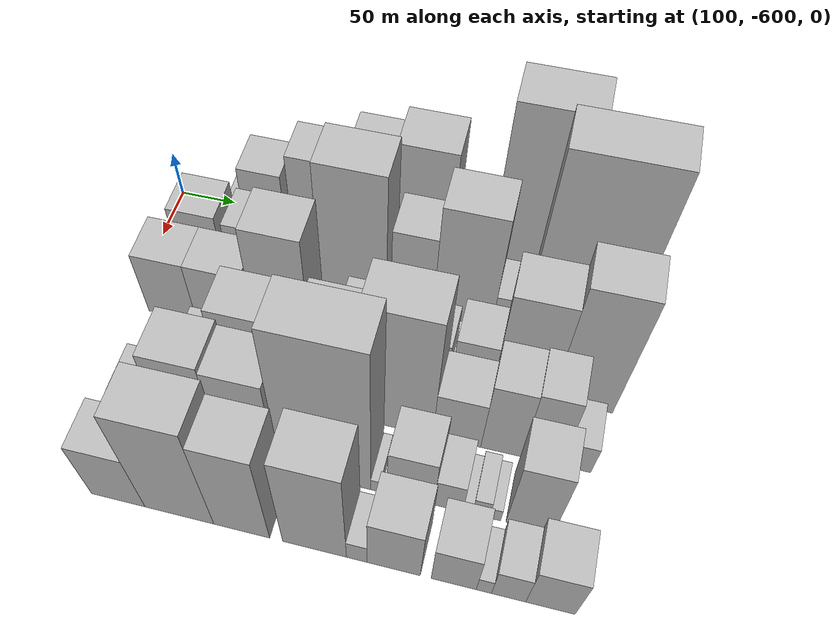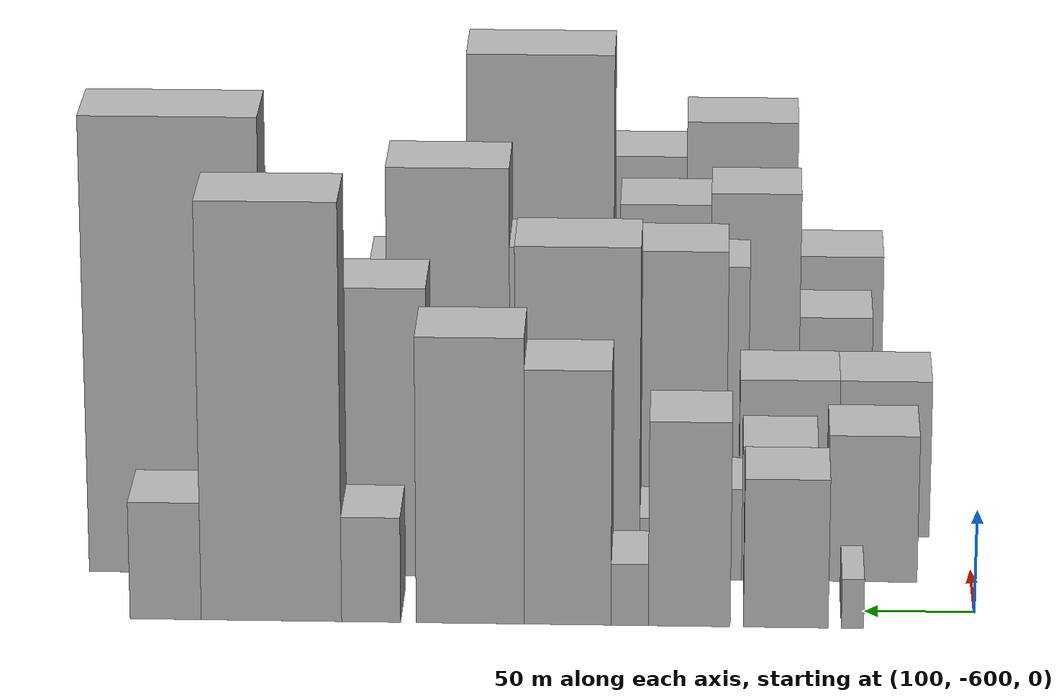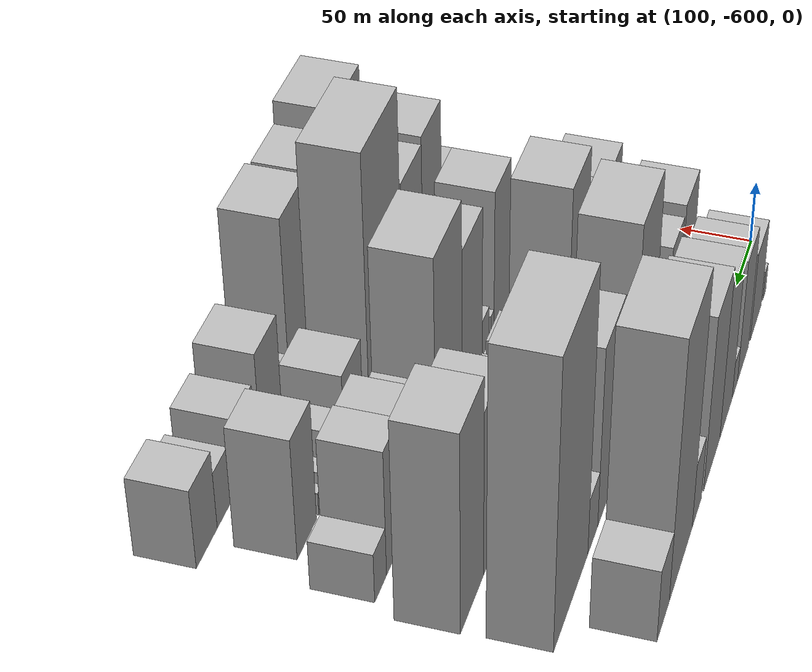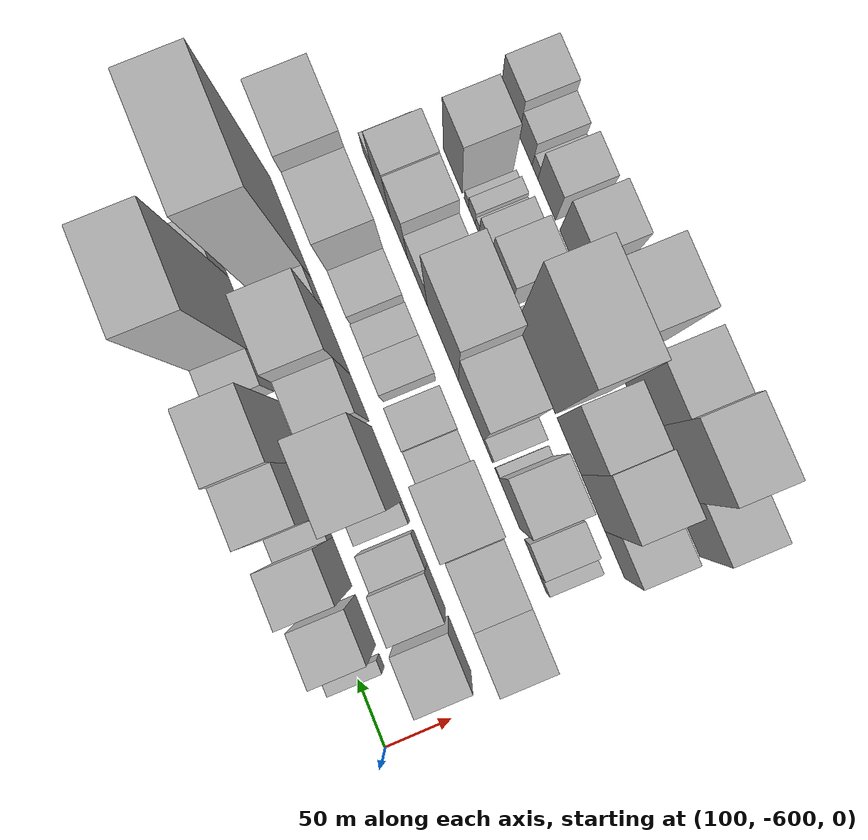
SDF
<sdf version="1.6">
 <world name="default">
  <model name="building_12">
   <static>1</static>
   <pose>100.0000 -543.9609 0 0.000000 0.000000 0.000000</pose>
   <link name="link">
    <pose>0 0 12.00 0 0 0</pose>
    <collision name="collision"><geometry><box><size>40.0000 10.0749 24.0000</size></box></geometry></collision>
    <visual name="visual">
     <cast_shadows>0</cast_shadows>
     <geometry><box><size>40.0000 10.0749 24.0000</size></box></geometry>
     <material>
      <script>
       <uri>model://HANNAS_wall/materials/scripts</uri>
       <uri>model://HANNAS_wall/materials/textures</uri>
       <name>vrc/HANNAS_wall</name>
      </script>
     </material>
    </visual>
   </link>
  </model>
  <model name="building_13">
   <static>1</static>
   <pose>100.0000 -513.7747 0 0.000000 0.000000 0.000000</pose>
   <link name="link">
    <pose>0 0 36.00 0 0 0</pose>
    <collision name="collision"><geometry><box><size>40.0000 38.2976 72.0000</size></box></geometry></collision>
    <visual name="visual">
     <cast_shadows>0</cast_shadows>
     <geometry><box><size>40.0000 38.2976 72.0000</size></box></geometry>
     <material>
      <script>
       <uri>model://HANNAS_wall/materials/scripts</uri>
       <uri>model://HANNAS_wall/materials/textures</uri>
       <name>vrc/HANNAS_wall</name>
      </script>
     </material>
    </visual>
   </link>
  </model>
  <model name="building_14">
   <static>1</static>
   <pose>100.0000 -470.0800 0 0.000000 0.000000 0.000000</pose>
   <link name="link">
    <pose>0 0 49.50 0 0 0</pose>
    <collision name="collision"><geometry><box><size>40.0000 37.0917 99.0000</size></box></geometry></collision>
    <visual name="visual">
     <cast_shadows>0</cast_shadows>
     <geometry><box><size>40.0000 37.0917 99.0000</size></box></geometry>
     <material>
      <script>
       <uri>model://HANNAS_wall/materials/scripts</uri>
       <uri>model://HANNAS_wall/materials/textures</uri>
       <name>vrc/HANNAS_wall</name>
      </script>
     </material>
    </visual>
   </link>
  </model>
  <model name="building_15">
   <static>1</static>
   <pose>100.0000 -443.1057 0 0.000000 0.000000 0.000000</pose>
   <link name="link">
    <pose>0 0 15.00 0 0 0</pose>
    <collision name="collision"><geometry><box><size>40.0000 16.8570 30.0000</size></box></geometry></collision>
    <visual name="visual">
     <cast_shadows>0</cast_shadows>
     <geometry><box><size>40.0000 16.8570 30.0000</size></box></geometry>
     <material>
      <script>
       <uri>model://HANNAS_wall/materials/scripts</uri>
       <uri>model://HANNAS_wall/materials/textures</uri>
       <name>vrc/HANNAS_wall</name>
      </script>
     </material>
    </visual>
   </link>
  </model>
  <model name="building_16">
   <static>1</static>
   <pose>100.0000 -414.9808 0 0.000000 0.000000 0.000000</pose>
   <link name="link">
    <pose>0 0 61.50 0 0 0</pose>
    <collision name="collision"><geometry><box><size>40.0000 39.3927 123.0000</size></box></geometry></collision>
    <visual name="visual">
     <cast_shadows>0</cast_shadows>
     <geometry><box><size>40.0000 39.3927 123.0000</size></box></geometry>
     <material>
      <script>
       <uri>model://HANNAS_wall/materials/scripts</uri>
       <uri>model://HANNAS_wall/materials/textures</uri>
       <name>vrc/HANNAS_wall</name>
      </script>
     </material>
    </visual>
   </link>
  </model>
  <model name="building_17">
   <static>1</static>
   <pose>100.0000 -370.8028 0 0.000000 0.000000 0.000000</pose>
   <link name="link">
    <pose>0 0 69.00 0 0 0</pose>
    <collision name="collision"><geometry><box><size>40.0000 48.9632 138.0000</size></box></geometry></collision>
    <visual name="visual">
     <cast_shadows>0</cast_shadows>
     <geometry><box><size>40.0000 48.9632 138.0000</size></box></geometry>
     <material>
      <script>
       <uri>model://HANNAS_wall/materials/scripts</uri>
       <uri>model://HANNAS_wall/materials/textures</uri>
       <name>vrc/HANNAS_wall</name>
      </script>
     </material>
    </visual>
   </link>
  </model>
  <model name="building_18">
   <static>1</static>
   <pose>100.0000 -325.9288 0 0.000000 0.000000 0.000000</pose>
   <link name="link">
    <pose>0 0 25.50 0 0 0</pose>
    <collision name="collision"><geometry><box><size>40.0000 26.7848 51.0000</size></box></geometry></collision>
    <visual name="visual">
     <cast_shadows>0</cast_shadows>
     <geometry><box><size>40.0000 26.7848 51.0000</size></box></geometry>
     <material>
      <script>
       <uri>model://HANNAS_wall/materials/scripts</uri>
       <uri>model://HANNAS_wall/materials/textures</uri>
       <name>vrc/HANNAS_wall</name>
      </script>
     </material>
    </visual>
   </link>
  </model>
  <model name="building_19">
   <static>1</static>
   <pose>100.0000 -280.6266 0 0.000000 0.000000 0.000000</pose>
   <link name="link">
    <pose>0 0 100.50 0 0 0</pose>
    <collision name="collision"><geometry><box><size>40.0000 63.8196 201.0000</size></box></geometry></collision>
    <visual name="visual">
     <cast_shadows>0</cast_shadows>
     <geometry><box><size>40.0000 63.8196 201.0000</size></box></geometry>
     <material>
      <script>
       <uri>model://HANNAS_wall/materials/scripts</uri>
       <uri>model://HANNAS_wall/materials/textures</uri>
       <name>vrc/HANNAS_wall</name>
      </script>
     </material>
    </visual>
   </link>
  </model>
  <model name="building_20">
   <static>1</static>
   <pose>100.0000 -232.5159 0 0.000000 0.000000 0.000000</pose>
   <link name="link">
    <pose>0 0 28.50 0 0 0</pose>
    <collision name="collision"><geometry><box><size>40.0000 32.4018 57.0000</size></box></geometry></collision>
    <visual name="visual">
     <cast_shadows>0</cast_shadows>
     <geometry><box><size>40.0000 32.4018 57.0000</size></box></geometry>
     <material>
      <script>
       <uri>model://HANNAS_wall/materials/scripts</uri>
       <uri>model://HANNAS_wall/materials/textures</uri>
       <name>vrc/HANNAS_wall</name>
      </script>
     </material>
    </visual>
   </link>
  </model>
  <model name="building_59">
   <static>1</static>
   <pose>155.0000 -553.9501 0 0.000000 0.000000 0.000000</pose>
   <link name="link">
    <pose>0 0 36.00 0 0 0</pose>
    <collision name="collision"><geometry><box><size>40.0000 41.3999 72.0000</size></box></geometry></collision>
    <visual name="visual">
     <cast_shadows>0</cast_shadows>
     <geometry><box><size>40.0000 41.3999 72.0000</size></box></geometry>
     <material>
      <script>
       <uri>model://HANNAS_wall/materials/scripts</uri>
       <uri>model://HANNAS_wall/materials/textures</uri>
       <name>vrc/HANNAS_wall</name>
      </script>
     </material>
    </visual>
   </link>
  </model>
  <model name="building_60">
   <static>1</static>
   <pose>155.0000 -511.0040 0 0.000000 0.000000 0.000000</pose>
   <link name="link">
    <pose>0 0 33.00 0 0 0</pose>
    <collision name="collision"><geometry><box><size>40.0000 34.4923 66.0000</size></box></geometry></collision>
    <visual name="visual">
     <cast_shadows>0</cast_shadows>
     <geometry><box><size>40.0000 34.4923 66.0000</size></box></geometry>
     <material>
      <script>
       <uri>model://HANNAS_wall/materials/scripts</uri>
       <uri>model://HANNAS_wall/materials/textures</uri>
       <name>vrc/HANNAS_wall</name>
      </script>
     </material>
    </visual>
   </link>
  </model>
  <model name="building_61">
   <static>1</static>
   <pose>155.0000 -480.9429 0 0.000000 0.000000 0.000000</pose>
   <link name="link">
    <pose>0 0 22.50 0 0 0</pose>
    <collision name="collision"><geometry><box><size>40.0000 25.6301 45.0000</size></box></geometry></collision>
    <visual name="visual">
     <cast_shadows>0</cast_shadows>
     <geometry><box><size>40.0000 25.6301 45.0000</size></box></geometry>
     <material>
      <script>
       <uri>model://HANNAS_wall/materials/scripts</uri>
       <uri>model://HANNAS_wall/materials/textures</uri>
       <name>vrc/HANNAS_wall</name>
      </script>
     </material>
    </visual>
   </link>
  </model>
  <model name="building_62">
   <static>1</static>
   <pose>155.0000 -454.3677 0 0.000000 0.000000 0.000000</pose>
   <link name="link">
    <pose>0 0 15.00 0 0 0</pose>
    <collision name="collision"><geometry><box><size>40.0000 15.5203 30.0000</size></box></geometry></collision>
    <visual name="visual">
     <cast_shadows>0</cast_shadows>
     <geometry><box><size>40.0000 15.5203 30.0000</size></box></geometry>
     <material>
      <script>
       <uri>model://HANNAS_wall/materials/scripts</uri>
       <uri>model://HANNAS_wall/materials/textures</uri>
       <name>vrc/HANNAS_wall</name>
      </script>
     </material>
    </visual>
   </link>
  </model>
  <model name="building_63">
   <static>1</static>
   <pose>155.0000 -417.8181 0 0.000000 0.000000 0.000000</pose>
   <link name="link">
    <pose>0 0 81.00 0 0 0</pose>
    <collision name="collision"><geometry><box><size>40.0000 57.5789 162.0000</size></box></geometry></collision>
    <visual name="visual">
     <cast_shadows>0</cast_shadows>
     <geometry><box><size>40.0000 57.5789 162.0000</size></box></geometry>
     <material>
      <script>
       <uri>model://HANNAS_wall/materials/scripts</uri>
       <uri>model://HANNAS_wall/materials/textures</uri>
       <name>vrc/HANNAS_wall</name>
      </script>
     </material>
    </visual>
   </link>
  </model>
  <model name="building_64">
   <static>1</static>
   <pose>155.0000 -366.7792 0 0.000000 0.000000 0.000000</pose>
   <link name="link">
    <pose>0 0 51.00 0 0 0</pose>
    <collision name="collision"><geometry><box><size>40.0000 36.4988 102.0000</size></box></geometry></collision>
    <visual name="visual">
     <cast_shadows>0</cast_shadows>
     <geometry><box><size>40.0000 36.4988 102.0000</size></box></geometry>
     <material>
      <script>
       <uri>model://HANNAS_wall/materials/scripts</uri>
       <uri>model://HANNAS_wall/materials/textures</uri>
       <name>vrc/HANNAS_wall</name>
      </script>
     </material>
    </visual>
   </link>
  </model>
  <model name="building_65">
   <static>1</static>
   <pose>155.0000 -323.1969 0 0.000000 0.000000 0.000000</pose>
   <link name="link">
    <pose>0 0 70.50 0 0 0</pose>
    <collision name="collision"><geometry><box><size>40.0000 50.6659 141.0000</size></box></geometry></collision>
    <visual name="visual">
     <cast_shadows>0</cast_shadows>
     <geometry><box><size>40.0000 50.6659 141.0000</size></box></geometry>
     <material>
      <script>
       <uri>model://HANNAS_wall/materials/scripts</uri>
       <uri>model://HANNAS_wall/materials/textures</uri>
       <name>vrc/HANNAS_wall</name>
      </script>
     </material>
    </visual>
   </link>
  </model>
  <model name="building_66">
   <static>1</static>
   <pose>155.0000 -285.4893 0 0.000000 0.000000 0.000000</pose>
   <link name="link">
    <pose>0 0 22.50 0 0 0</pose>
    <collision name="collision"><geometry><box><size>40.0000 24.7493 45.0000</size></box></geometry></collision>
    <visual name="visual">
     <cast_shadows>0</cast_shadows>
     <geometry><box><size>40.0000 24.7493 45.0000</size></box></geometry>
     <material>
      <script>
       <uri>model://HANNAS_wall/materials/scripts</uri>
       <uri>model://HANNAS_wall/materials/textures</uri>
       <name>vrc/HANNAS_wall</name>
      </script>
     </material>
    </visual>
   </link>
  </model>
  <model name="building_67">
   <static>1</static>
   <pose>155.0000 -232.5237 0 0.000000 0.000000 0.000000</pose>
   <link name="link">
    <pose>0 0 111.00 0 0 0</pose>
    <collision name="collision"><geometry><box><size>40.0000 81.1820 222.0000</size></box></geometry></collision>
    <visual name="visual">
     <cast_shadows>0</cast_shadows>
     <geometry><box><size>40.0000 81.1820 222.0000</size></box></geometry>
     <material>
      <script>
       <uri>model://HANNAS_wall/materials/scripts</uri>
       <uri>model://HANNAS_wall/materials/textures</uri>
       <name>vrc/HANNAS_wall</name>
      </script>
     </material>
    </visual>
   </link>
  </model>
  <model name="building_103">
   <static>1</static>
   <pose>210.0000 -560.4819 0 0.000000 0.000000 0.000000</pose>
   <link name="link">
    <pose>0 0 39.00 0 0 0</pose>
    <collision name="collision"><geometry><box><size>40.0000 42.9157 78.0000</size></box></geometry></collision>
    <visual name="visual">
     <cast_shadows>0</cast_shadows>
     <geometry><box><size>40.0000 42.9157 78.0000</size></box></geometry>
     <material>
      <script>
       <uri>model://HANNAS_wall/materials/scripts</uri>
       <uri>model://HANNAS_wall/materials/textures</uri>
       <name>vrc/HANNAS_wall</name>
      </script>
     </material>
    </visual>
   </link>
  </model>
  <model name="building_104">
   <static>1</static>
   <pose>210.0000 -515.7140 0 0.000000 0.000000 0.000000</pose>
   <link name="link">
    <pose>0 0 39.00 0 0 0</pose>
    <collision name="collision"><geometry><box><size>40.0000 46.6199 78.0000</size></box></geometry></collision>
    <visual name="visual">
     <cast_shadows>0</cast_shadows>
     <geometry><box><size>40.0000 46.6199 78.0000</size></box></geometry>
     <material>
      <script>
       <uri>model://HANNAS_wall/materials/scripts</uri>
       <uri>model://HANNAS_wall/materials/textures</uri>
       <name>vrc/HANNAS_wall</name>
      </script>
     </material>
    </visual>
   </link>
  </model>
  <model name="building_105">
   <static>1</static>
   <pose>210.0000 -462.8884 0 0.000000 0.000000 0.000000</pose>
   <link name="link">
    <pose>0 0 70.50 0 0 0</pose>
    <collision name="collision"><geometry><box><size>40.0000 47.0313 141.0000</size></box></geometry></collision>
    <visual name="visual">
     <cast_shadows>0</cast_shadows>
     <geometry><box><size>40.0000 47.0313 141.0000</size></box></geometry>
     <material>
      <script>
       <uri>model://HANNAS_wall/materials/scripts</uri>
       <uri>model://HANNAS_wall/materials/textures</uri>
       <name>vrc/HANNAS_wall</name>
      </script>
     </material>
    </visual>
   </link>
  </model>
  <model name="building_106">
   <static>1</static>
   <pose>210.0000 -427.7763 0 0.000000 0.000000 0.000000</pose>
   <link name="link">
    <pose>0 0 19.50 0 0 0</pose>
    <collision name="collision"><geometry><box><size>40.0000 23.1929 39.0000</size></box></geometry></collision>
    <visual name="visual">
     <cast_shadows>0</cast_shadows>
     <geometry><box><size>40.0000 23.1929 39.0000</size></box></geometry>
     <material>
      <script>
       <uri>model://HANNAS_wall/materials/scripts</uri>
       <uri>model://HANNAS_wall/materials/textures</uri>
       <name>vrc/HANNAS_wall</name>
      </script>
     </material>
    </visual>
   </link>
  </model>
  <model name="building_107">
   <static>1</static>
   <pose>210.0000 -400.6381 0 0.000000 0.000000 0.000000</pose>
   <link name="link">
    <pose>0 0 27.00 0 0 0</pose>
    <collision name="collision"><geometry><box><size>40.0000 31.0836 54.0000</size></box></geometry></collision>
    <visual name="visual">
     <cast_shadows>0</cast_shadows>
     <geometry><box><size>40.0000 31.0836 54.0000</size></box></geometry>
     <material>
      <script>
       <uri>model://HANNAS_wall/materials/scripts</uri>
       <uri>model://HANNAS_wall/materials/textures</uri>
       <name>vrc/HANNAS_wall</name>
      </script>
     </material>
    </visual>
   </link>
  </model>
  <model name="building_108">
   <static>1</static>
   <pose>210.0000 -362.2429 0 0.000000 0.000000 0.000000</pose>
   <link name="link">
    <pose>0 0 25.50 0 0 0</pose>
    <collision name="collision"><geometry><box><size>40.0000 27.7068 51.0000</size></box></geometry></collision>
    <visual name="visual">
     <cast_shadows>0</cast_shadows>
     <geometry><box><size>40.0000 27.7068 51.0000</size></box></geometry>
     <material>
      <script>
       <uri>model://HANNAS_wall/materials/scripts</uri>
       <uri>model://HANNAS_wall/materials/textures</uri>
       <name>vrc/HANNAS_wall</name>
      </script>
     </material>
    </visual>
   </link>
  </model>
  <model name="building_109">
   <static>1</static>
   <pose>210.0000 -335.8289 0 0.000000 0.000000 0.000000</pose>
   <link name="link">
    <pose>0 0 22.50 0 0 0</pose>
    <collision name="collision"><geometry><box><size>40.0000 25.1213 45.0000</size></box></geometry></collision>
    <visual name="visual">
     <cast_shadows>0</cast_shadows>
     <geometry><box><size>40.0000 25.1213 45.0000</size></box></geometry>
     <material>
      <script>
       <uri>model://HANNAS_wall/materials/scripts</uri>
       <uri>model://HANNAS_wall/materials/textures</uri>
       <name>vrc/HANNAS_wall</name>
      </script>
     </material>
    </visual>
   </link>
  </model>
  <model name="building_110">
   <static>1</static>
   <pose>210.0000 -303.3740 0 0.000000 0.000000 0.000000</pose>
   <link name="link">
    <pose>0 0 28.50 0 0 0</pose>
    <collision name="collision"><geometry><box><size>40.0000 33.7884 57.0000</size></box></geometry></collision>
    <visual name="visual">
     <cast_shadows>0</cast_shadows>
     <geometry><box><size>40.0000 33.7884 57.0000</size></box></geometry>
     <material>
      <script>
       <uri>model://HANNAS_wall/materials/scripts</uri>
       <uri>model://HANNAS_wall/materials/textures</uri>
       <name>vrc/HANNAS_wall</name>
      </script>
     </material>
    </visual>
   </link>
  </model>
  <model name="building_111">
   <static>1</static>
   <pose>210.0000 -262.8691 0 0.000000 0.000000 0.000000</pose>
   <link name="link">
    <pose>0 0 64.50 0 0 0</pose>
    <collision name="collision"><geometry><box><size>40.0000 47.2214 129.0000</size></box></geometry></collision>
    <visual name="visual">
     <cast_shadows>0</cast_shadows>
     <geometry><box><size>40.0000 47.2214 129.0000</size></box></geometry>
     <material>
      <script>
       <uri>model://HANNAS_wall/materials/scripts</uri>
       <uri>model://HANNAS_wall/materials/textures</uri>
       <name>vrc/HANNAS_wall</name>
      </script>
     </material>
    </visual>
   </link>
  </model>
  <model name="building_112">
   <static>1</static>
   <pose>210.0000 -214.8935 0 0.000000 0.000000 0.000000</pose>
   <link name="link">
    <pose>0 0 78.00 0 0 0</pose>
    <collision name="collision"><geometry><box><size>40.0000 48.7298 156.0000</size></box></geometry></collision>
    <visual name="visual">
     <cast_shadows>0</cast_shadows>
     <geometry><box><size>40.0000 48.7298 156.0000</size></box></geometry>
     <material>
      <script>
       <uri>model://HANNAS_wall/materials/scripts</uri>
       <uri>model://HANNAS_wall/materials/textures</uri>
       <name>vrc/HANNAS_wall</name>
      </script>
     </material>
    </visual>
   </link>
  </model>
  <model name="building_152">
   <static>1</static>
   <pose>265.0000 -537.9163 0 0.000000 0.000000 0.000000</pose>
   <link name="link">
    <pose>0 0 13.50 0 0 0</pose>
    <collision name="collision"><geometry><box><size>40.0000 13.4849 27.0000</size></box></geometry></collision>
    <visual name="visual">
     <cast_shadows>0</cast_shadows>
     <geometry><box><size>40.0000 13.4849 27.0000</size></box></geometry>
     <material>
      <script>
       <uri>model://HANNAS_wall/materials/scripts</uri>
       <uri>model://HANNAS_wall/materials/textures</uri>
       <name>vrc/HANNAS_wall</name>
      </script>
     </material>
    </visual>
   </link>
  </model>
  <model name="building_153">
   <static>1</static>
   <pose>265.0000 -517.9231 0 0.000000 0.000000 0.000000</pose>
   <link name="link">
    <pose>0 0 24.00 0 0 0</pose>
    <collision name="collision"><geometry><box><size>40.0000 26.5014 48.0000</size></box></geometry></collision>
    <visual name="visual">
     <cast_shadows>0</cast_shadows>
     <geometry><box><size>40.0000 26.5014 48.0000</size></box></geometry>
     <material>
      <script>
       <uri>model://HANNAS_wall/materials/scripts</uri>
       <uri>model://HANNAS_wall/materials/textures</uri>
       <name>vrc/HANNAS_wall</name>
      </script>
     </material>
    </visual>
   </link>
  </model>
  <model name="building_154">
   <static>1</static>
   <pose>265.0000 -477.1637 0 0.000000 0.000000 0.000000</pose>
   <link name="link">
    <pose>0 0 57.00 0 0 0</pose>
    <collision name="collision"><geometry><box><size>40.0000 39.0174 114.0000</size></box></geometry></collision>
    <visual name="visual">
     <cast_shadows>0</cast_shadows>
     <geometry><box><size>40.0000 39.0174 114.0000</size></box></geometry>
     <material>
      <script>
       <uri>model://HANNAS_wall/materials/scripts</uri>
       <uri>model://HANNAS_wall/materials/textures</uri>
       <name>vrc/HANNAS_wall</name>
      </script>
     </material>
    </visual>
   </link>
  </model>
  <model name="building_155">
   <static>1</static>
   <pose>265.0000 -453.8114 0 0.000000 0.000000 0.000000</pose>
   <link name="link">
    <pose>0 0 9.00 0 0 0</pose>
    <collision name="collision"><geometry><box><size>40.0000 7.6872 18.0000</size></box></geometry></collision>
    <visual name="visual">
     <cast_shadows>0</cast_shadows>
     <geometry><box><size>40.0000 7.6872 18.0000</size></box></geometry>
     <material>
      <script>
       <uri>model://HANNAS_wall/materials/scripts</uri>
       <uri>model://HANNAS_wall/materials/textures</uri>
       <name>vrc/HANNAS_wall</name>
      </script>
     </material>
    </visual>
   </link>
  </model>
  <model name="building_156">
   <static>1</static>
   <pose>265.0000 -437.5551 0 0.000000 0.000000 0.000000</pose>
   <link name="link">
    <pose>0 0 15.00 0 0 0</pose>
    <collision name="collision"><geometry><box><size>40.0000 16.8253 30.0000</size></box></geometry></collision>
    <visual name="visual">
     <cast_shadows>0</cast_shadows>
     <geometry><box><size>40.0000 16.8253 30.0000</size></box></geometry>
     <material>
      <script>
       <uri>model://HANNAS_wall/materials/scripts</uri>
       <uri>model://HANNAS_wall/materials/textures</uri>
       <name>vrc/HANNAS_wall</name>
      </script>
     </material>
    </visual>
   </link>
  </model>
  <model name="building_157">
   <static>1</static>
   <pose>265.0000 -405.8479 0 0.000000 0.000000 0.000000</pose>
   <link name="link">
    <pose>0 0 61.50 0 0 0</pose>
    <collision name="collision"><geometry><box><size>40.0000 46.5891 123.0000</size></box></geometry></collision>
    <visual name="visual">
     <cast_shadows>0</cast_shadows>
     <geometry><box><size>40.0000 46.5891 123.0000</size></box></geometry>
     <material>
      <script>
       <uri>model://HANNAS_wall/materials/scripts</uri>
       <uri>model://HANNAS_wall/materials/textures</uri>
       <name>vrc/HANNAS_wall</name>
      </script>
     </material>
    </visual>
   </link>
  </model>
  <model name="building_158">
   <static>1</static>
   <pose>265.0000 -353.3330 0 0.000000 0.000000 0.000000</pose>
   <link name="link">
    <pose>0 0 81.00 0 0 0</pose>
    <collision name="collision"><geometry><box><size>40.0000 58.4408 162.0000</size></box></geometry></collision>
    <visual name="visual">
     <cast_shadows>0</cast_shadows>
     <geometry><box><size>40.0000 58.4408 162.0000</size></box></geometry>
     <material>
      <script>
       <uri>model://HANNAS_wall/materials/scripts</uri>
       <uri>model://HANNAS_wall/materials/textures</uri>
       <name>vrc/HANNAS_wall</name>
      </script>
     </material>
    </visual>
   </link>
  </model>
  <model name="building_159">
   <static>1</static>
   <pose>265.0000 -305.1474 0 0.000000 0.000000 0.000000</pose>
   <link name="link">
    <pose>0 0 33.00 0 0 0</pose>
    <collision name="collision"><geometry><box><size>40.0000 37.9304 66.0000</size></box></geometry></collision>
    <visual name="visual">
     <cast_shadows>0</cast_shadows>
     <geometry><box><size>40.0000 37.9304 66.0000</size></box></geometry>
     <material>
      <script>
       <uri>model://HANNAS_wall/materials/scripts</uri>
       <uri>model://HANNAS_wall/materials/textures</uri>
       <name>vrc/HANNAS_wall</name>
      </script>
     </material>
    </visual>
   </link>
  </model>
  <model name="building_160">
   <static>1</static>
   <pose>265.0000 -270.0293 0 0.000000 0.000000 0.000000</pose>
   <link name="link">
    <pose>0 0 48.00 0 0 0</pose>
    <collision name="collision"><geometry><box><size>40.0000 32.3058 96.0000</size></box></geometry></collision>
    <visual name="visual">
     <cast_shadows>0</cast_shadows>
     <geometry><box><size>40.0000 32.3058 96.0000</size></box></geometry>
     <material>
      <script>
       <uri>model://HANNAS_wall/materials/scripts</uri>
       <uri>model://HANNAS_wall/materials/textures</uri>
       <name>vrc/HANNAS_wall</name>
      </script>
     </material>
    </visual>
   </link>
  </model>
  <model name="building_161">
   <static>1</static>
   <pose>265.0000 -238.6802 0 0.000000 0.000000 0.000000</pose>
   <link name="link">
    <pose>0 0 49.50 0 0 0</pose>
    <collision name="collision"><geometry><box><size>40.0000 30.3923 99.0000</size></box></geometry></collision>
    <visual name="visual">
     <cast_shadows>0</cast_shadows>
     <geometry><box><size>40.0000 30.3923 99.0000</size></box></geometry>
     <material>
      <script>
       <uri>model://HANNAS_wall/materials/scripts</uri>
       <uri>model://HANNAS_wall/materials/textures</uri>
       <name>vrc/HANNAS_wall</name>
      </script>
     </material>
    </visual>
   </link>
  </model>
  <model name="building_162">
   <static>1</static>
   <pose>265.0000 -212.0514 0 0.000000 0.000000 0.000000</pose>
   <link name="link">
    <pose>0 0 19.50 0 0 0</pose>
    <collision name="collision"><geometry><box><size>40.0000 22.8653 39.0000</size></box></geometry></collision>
    <visual name="visual">
     <cast_shadows>0</cast_shadows>
     <geometry><box><size>40.0000 22.8653 39.0000</size></box></geometry>
     <material>
      <script>
       <uri>model://HANNAS_wall/materials/scripts</uri>
       <uri>model://HANNAS_wall/materials/textures</uri>
       <name>vrc/HANNAS_wall</name>
      </script>
     </material>
    </visual>
   </link>
  </model>
  <model name="building_203">
   <static>1</static>
   <pose>320.0000 -539.0806 0 0.000000 0.000000 0.000000</pose>
   <link name="link">
    <pose>0 0 34.50 0 0 0</pose>
    <collision name="collision"><geometry><box><size>40.0000 35.3674 69.0000</size></box></geometry></collision>
    <visual name="visual">
     <cast_shadows>0</cast_shadows>
     <geometry><box><size>40.0000 35.3674 69.0000</size></box></geometry>
     <material>
      <script>
       <uri>model://HANNAS_wall/materials/scripts</uri>
       <uri>model://HANNAS_wall/materials/textures</uri>
       <name>vrc/HANNAS_wall</name>
      </script>
     </material>
    </visual>
   </link>
  </model>
  <model name="building_204">
   <static>1</static>
   <pose>320.0000 -499.7345 0 0.000000 0.000000 0.000000</pose>
   <link name="link">
    <pose>0 0 66.00 0 0 0</pose>
    <collision name="collision"><geometry><box><size>40.0000 43.3250 132.0000</size></box></geometry></collision>
    <visual name="visual">
     <cast_shadows>0</cast_shadows>
     <geometry><box><size>40.0000 43.3250 132.0000</size></box></geometry>
     <material>
      <script>
       <uri>model://HANNAS_wall/materials/scripts</uri>
       <uri>model://HANNAS_wall/materials/textures</uri>
       <name>vrc/HANNAS_wall</name>
      </script>
     </material>
    </visual>
   </link>
  </model>
  <model name="building_205">
   <static>1</static>
   <pose>320.0000 -456.0995 0 0.000000 0.000000 0.000000</pose>
   <link name="link">
    <pose>0 0 63.00 0 0 0</pose>
    <collision name="collision"><geometry><box><size>40.0000 43.9449 126.0000</size></box></geometry></collision>
    <visual name="visual">
     <cast_shadows>0</cast_shadows>
     <geometry><box><size>40.0000 43.9449 126.0000</size></box></geometry>
     <material>
      <script>
       <uri>model://HANNAS_wall/materials/scripts</uri>
       <uri>model://HANNAS_wall/materials/textures</uri>
       <name>vrc/HANNAS_wall</name>
      </script>
     </material>
    </visual>
   </link>
  </model>
  <model name="building_206">
   <static>1</static>
   <pose>320.0000 -395.5848 0 0.000000 0.000000 0.000000</pose>
   <link name="link">
    <pose>0 0 100.50 0 0 0</pose>
    <collision name="collision"><geometry><box><size>40.0000 71.0845 201.0000</size></box></geometry></collision>
    <visual name="visual">
     <cast_shadows>0</cast_shadows>
     <geometry><box><size>40.0000 71.0845 201.0000</size></box></geometry>
     <material>
      <script>
       <uri>model://HANNAS_wall/materials/scripts</uri>
       <uri>model://HANNAS_wall/materials/textures</uri>
       <name>vrc/HANNAS_wall</name>
      </script>
     </material>
    </visual>
   </link>
  </model>
  <model name="building_207">
   <static>1</static>
   <pose>320.0000 -356.3410 0 0.000000 0.000000 0.000000</pose>
   <link name="link">
    <pose>0 0 9.00 0 0 0</pose>
    <collision name="collision"><geometry><box><size>40.0000 7.4031 18.0000</size></box></geometry></collision>
    <visual name="visual">
     <cast_shadows>0</cast_shadows>
     <geometry><box><size>40.0000 7.4031 18.0000</size></box></geometry>
     <material>
      <script>
       <uri>model://HANNAS_wall/materials/scripts</uri>
       <uri>model://HANNAS_wall/materials/textures</uri>
       <name>vrc/HANNAS_wall</name>
      </script>
     </material>
    </visual>
   </link>
  </model>
  <model name="building_208">
   <static>1</static>
   <pose>320.0000 -329.3421 0 0.000000 0.000000 0.000000</pose>
   <link name="link">
    <pose>0 0 34.50 0 0 0</pose>
    <collision name="collision"><geometry><box><size>40.0000 36.5948 69.0000</size></box></geometry></collision>
    <visual name="visual">
     <cast_shadows>0</cast_shadows>
     <geometry><box><size>40.0000 36.5948 69.0000</size></box></geometry>
     <material>
      <script>
       <uri>model://HANNAS_wall/materials/scripts</uri>
       <uri>model://HANNAS_wall/materials/textures</uri>
       <name>vrc/HANNAS_wall</name>
      </script>
     </material>
    </visual>
   </link>
  </model>
  <model name="building_209">
   <static>1</static>
   <pose>320.0000 -300.0366 0 0.000000 0.000000 0.000000</pose>
   <link name="link">
    <pose>0 0 21.00 0 0 0</pose>
    <collision name="collision"><geometry><box><size>40.0000 22.0162 42.0000</size></box></geometry></collision>
    <visual name="visual">
     <cast_shadows>0</cast_shadows>
     <geometry><box><size>40.0000 22.0162 42.0000</size></box></geometry>
     <material>
      <script>
       <uri>model://HANNAS_wall/materials/scripts</uri>
       <uri>model://HANNAS_wall/materials/textures</uri>
       <name>vrc/HANNAS_wall</name>
      </script>
     </material>
    </visual>
   </link>
  </model>
  <model name="building_210">
   <static>1</static>
   <pose>320.0000 -285.4157 0 0.000000 0.000000 0.000000</pose>
   <link name="link">
    <pose>0 0 9.00 0 0 0</pose>
    <collision name="collision"><geometry><box><size>40.0000 7.2256 18.0000</size></box></geometry></collision>
    <visual name="visual">
     <cast_shadows>0</cast_shadows>
     <geometry><box><size>40.0000 7.2256 18.0000</size></box></geometry>
     <material>
      <script>
       <uri>model://HANNAS_wall/materials/scripts</uri>
       <uri>model://HANNAS_wall/materials/textures</uri>
       <name>vrc/HANNAS_wall</name>
      </script>
     </material>
    </visual>
   </link>
  </model>
  <model name="building_211">
   <static>1</static>
   <pose>320.0000 -275.3281 0 0.000000 0.000000 0.000000</pose>
   <link name="link">
    <pose>0 0 13.50 0 0 0</pose>
    <collision name="collision"><geometry><box><size>40.0000 12.9495 27.0000</size></box></geometry></collision>
    <visual name="visual">
     <cast_shadows>0</cast_shadows>
     <geometry><box><size>40.0000 12.9495 27.0000</size></box></geometry>
     <material>
      <script>
       <uri>model://HANNAS_wall/materials/scripts</uri>
       <uri>model://HANNAS_wall/materials/textures</uri>
       <name>vrc/HANNAS_wall</name>
      </script>
     </material>
    </visual>
   </link>
  </model>
  <model name="building_212">
   <static>1</static>
   <pose>320.0000 -264.7172 0 0.000000 0.000000 0.000000</pose>
   <link name="link">
    <pose>0 0 9.00 0 0 0</pose>
    <collision name="collision"><geometry><box><size>40.0000 8.2723 18.0000</size></box></geometry></collision>
    <visual name="visual">
     <cast_shadows>0</cast_shadows>
     <geometry><box><size>40.0000 8.2723 18.0000</size></box></geometry>
     <material>
      <script>
       <uri>model://HANNAS_wall/materials/scripts</uri>
       <uri>model://HANNAS_wall/materials/textures</uri>
       <name>vrc/HANNAS_wall</name>
      </script>
     </material>
    </visual>
   </link>
  </model>
  <model name="building_213">
   <static>1</static>
   <pose>320.0000 -238.7930 0 0.000000 0.000000 0.000000</pose>
   <link name="link">
    <pose>0 0 48.00 0 0 0</pose>
    <collision name="collision"><geometry><box><size>40.0000 35.5761 96.0000</size></box></geometry></collision>
    <visual name="visual">
     <cast_shadows>0</cast_shadows>
     <geometry><box><size>40.0000 35.5761 96.0000</size></box></geometry>
     <material>
      <script>
       <uri>model://HANNAS_wall/materials/scripts</uri>
       <uri>model://HANNAS_wall/materials/textures</uri>
       <name>vrc/HANNAS_wall</name>
      </script>
     </material>
    </visual>
   </link>
  </model>
  <model name="building_258">
   <static>1</static>
   <pose>375.0000 -541.6069 0 0.000000 0.000000 0.000000</pose>
   <link name="link">
    <pose>0 0 40.50 0 0 0</pose>
    <collision name="collision"><geometry><box><size>40.0000 42.9859 81.0000</size></box></geometry></collision>
    <visual name="visual">
     <cast_shadows>0</cast_shadows>
     <geometry><box><size>40.0000 42.9859 81.0000</size></box></geometry>
     <material>
      <script>
       <uri>model://HANNAS_wall/materials/scripts</uri>
       <uri>model://HANNAS_wall/materials/textures</uri>
       <name>vrc/HANNAS_wall</name>
      </script>
     </material>
    </visual>
   </link>
  </model>
  <model name="building_259">
   <static>1</static>
   <pose>375.0000 -492.9520 0 0.000000 0.000000 0.000000</pose>
   <link name="link">
    <pose>0 0 75.00 0 0 0</pose>
    <collision name="collision"><geometry><box><size>40.0000 54.3239 150.0000</size></box></geometry></collision>
    <visual name="visual">
     <cast_shadows>0</cast_shadows>
     <geometry><box><size>40.0000 54.3239 150.0000</size></box></geometry>
     <material>
      <script>
       <uri>model://HANNAS_wall/materials/scripts</uri>
       <uri>model://HANNAS_wall/materials/textures</uri>
       <name>vrc/HANNAS_wall</name>
      </script>
     </material>
    </visual>
   </link>
  </model>
  <model name="building_260">
   <static>1</static>
   <pose>375.0000 -444.1492 0 0.000000 0.000000 0.000000</pose>
   <link name="link">
    <pose>0 0 66.00 0 0 0</pose>
    <collision name="collision"><geometry><box><size>40.0000 43.2818 132.0000</size></box></geometry></collision>
    <visual name="visual">
     <cast_shadows>0</cast_shadows>
     <geometry><box><size>40.0000 43.2818 132.0000</size></box></geometry>
     <material>
      <script>
       <uri>model://HANNAS_wall/materials/scripts</uri>
       <uri>model://HANNAS_wall/materials/textures</uri>
       <name>vrc/HANNAS_wall</name>
      </script>
     </material>
    </visual>
   </link>
  </model>
  <model name="building_261">
   <static>1</static>
   <pose>375.0000 -388.2822 0 0.000000 0.000000 0.000000</pose>
   <link name="link">
    <pose>0 0 69.00 0 0 0</pose>
    <collision name="collision"><geometry><box><size>40.0000 48.4521 138.0000</size></box></geometry></collision>
    <visual name="visual">
     <cast_shadows>0</cast_shadows>
     <geometry><box><size>40.0000 48.4521 138.0000</size></box></geometry>
     <material>
      <script>
       <uri>model://HANNAS_wall/materials/scripts</uri>
       <uri>model://HANNAS_wall/materials/textures</uri>
       <name>vrc/HANNAS_wall</name>
      </script>
     </material>
    </visual>
   </link>
  </model>
  <model name="building_262">
   <static>1</static>
   <pose>375.0000 -356.3093 0 0.000000 0.000000 0.000000</pose>
   <link name="link">
    <pose>0 0 15.00 0 0 0</pose>
    <collision name="collision"><geometry><box><size>40.0000 15.4936 30.0000</size></box></geometry></collision>
    <visual name="visual">
     <cast_shadows>0</cast_shadows>
     <geometry><box><size>40.0000 15.4936 30.0000</size></box></geometry>
     <material>
      <script>
       <uri>model://HANNAS_wall/materials/scripts</uri>
       <uri>model://HANNAS_wall/materials/textures</uri>
       <name>vrc/HANNAS_wall</name>
      </script>
     </material>
    </visual>
   </link>
  </model>
  <model name="building_263">
   <static>1</static>
   <pose>375.0000 -328.8722 0 0.000000 0.000000 0.000000</pose>
   <link name="link">
    <pose>0 0 37.50 0 0 0</pose>
    <collision name="collision"><geometry><box><size>40.0000 39.3806 75.0000</size></box></geometry></collision>
    <visual name="visual">
     <cast_shadows>0</cast_shadows>
     <geometry><box><size>40.0000 39.3806 75.0000</size></box></geometry>
     <material>
      <script>
       <uri>model://HANNAS_wall/materials/scripts</uri>
       <uri>model://HANNAS_wall/materials/textures</uri>
       <name>vrc/HANNAS_wall</name>
      </script>
     </material>
    </visual>
   </link>
  </model>
  <model name="building_264">
   <static>1</static>
   <pose>375.0000 -284.7312 0 0.000000 0.000000 0.000000</pose>
   <link name="link">
    <pose>0 0 28.50 0 0 0</pose>
    <collision name="collision"><geometry><box><size>40.0000 32.9014 57.0000</size></box></geometry></collision>
    <visual name="visual">
     <cast_shadows>0</cast_shadows>
     <geometry><box><size>40.0000 32.9014 57.0000</size></box></geometry>
     <material>
      <script>
       <uri>model://HANNAS_wall/materials/scripts</uri>
       <uri>model://HANNAS_wall/materials/textures</uri>
       <name>vrc/HANNAS_wall</name>
      </script>
     </material>
    </visual>
   </link>
  </model>
  <model name="building_265">
   <static>1</static>
   <pose>375.0000 -262.7415 0 0.000000 0.000000 0.000000</pose>
   <link name="link">
    <pose>0 0 12.00 0 0 0</pose>
    <collision name="collision"><geometry><box><size>40.0000 11.0779 24.0000</size></box></geometry></collision>
    <visual name="visual">
     <cast_shadows>0</cast_shadows>
     <geometry><box><size>40.0000 11.0779 24.0000</size></box></geometry>
     <material>
      <script>
       <uri>model://HANNAS_wall/materials/scripts</uri>
       <uri>model://HANNAS_wall/materials/textures</uri>
       <name>vrc/HANNAS_wall</name>
      </script>
     </material>
    </visual>
   </link>
  </model>
  <model name="building_266">
   <static>1</static>
   <pose>375.0000 -244.9132 0 0.000000 0.000000 0.000000</pose>
   <link name="link">
    <pose>0 0 22.50 0 0 0</pose>
    <collision name="collision"><geometry><box><size>40.0000 24.5789 45.0000</size></box></geometry></collision>
    <visual name="visual">
     <cast_shadows>0</cast_shadows>
     <geometry><box><size>40.0000 24.5789 45.0000</size></box></geometry>
     <material>
      <script>
       <uri>model://HANNAS_wall/materials/scripts</uri>
       <uri>model://HANNAS_wall/materials/textures</uri>
       <name>vrc/HANNAS_wall</name>
      </script>
     </material>
    </visual>
   </link>
  </model>
  <model name="building_267">
   <static>1</static>
   <pose>375.0000 -215.0873 0 0.000000 0.000000 0.000000</pose>
   <link name="link">
    <pose>0 0 31.50 0 0 0</pose>
    <collision name="collision"><geometry><box><size>40.0000 35.0729 63.0000</size></box></geometry></collision>
    <visual name="visual">
     <cast_shadows>0</cast_shadows>
     <geometry><box><size>40.0000 35.0729 63.0000</size></box></geometry>
     <material>
      <script>
       <uri>model://HANNAS_wall/materials/scripts</uri>
       <uri>model://HANNAS_wall/materials/textures</uri>
       <name>vrc/HANNAS_wall</name>
      </script>
     </material>
    </visual>
   </link>
  </model>
 </world>
</sdf>
